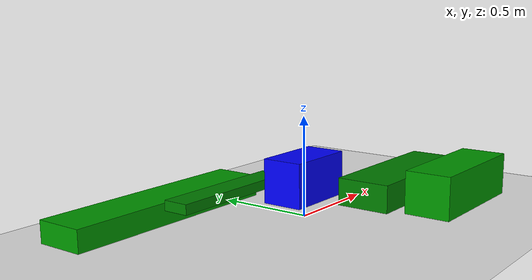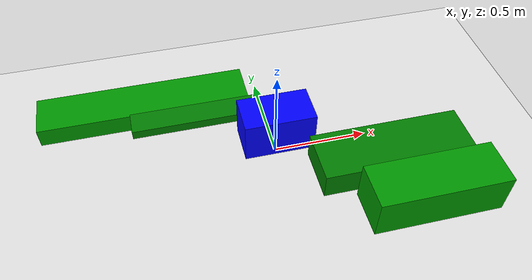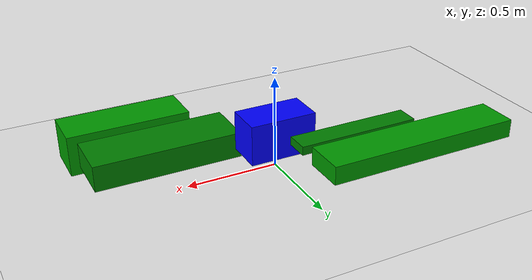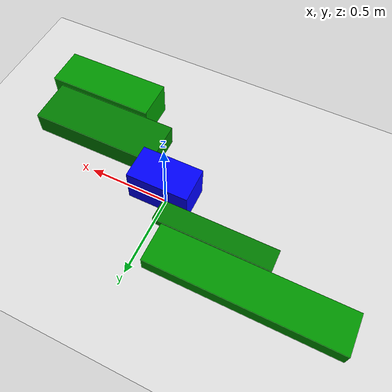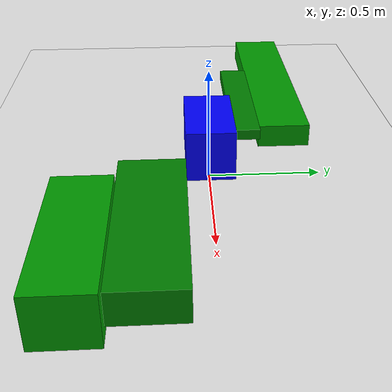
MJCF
<mujoco>
    <worldbody>
    <light diffuse=".5 .5 .5" pos="0 0 3" dir="0 0 -1"/>
    <geom type="plane" size="5 5 0.1" rgba=".9 0.9 0.9 1"/>
    <body name="main body" pos="0 0 .2">
        <joint type="free"/>
        <geom type="box" size="0.1823618432185498 0.10347852472478945 0.10960618824937188" rgba="0 0 1 1" mass="1"/>
        <site name="marker" pos="0 0 0" size="0.05"/>
        <site name="robot_center" pos="0 0 0" size="0.01"/>
        <body name="left_leg1" pos="-0.38 0.16718027308015931 -0.017958062020742512">
            <joint name="left_leg1_joint" type="hinge" axis="0 1 0" pos="0 0 0"/>
            <geom type="box" size="0.3416734528961997 0.06370174835536987 0.024025585299729122" rgba="0 .5 0 1" mass="1"/>
            <body name="left_leg2" pos="-0.2637532840594213 0.17935771714268178 -0.04">
                <joint name="left_leg2_joint" type="hinge" axis="0 1 0" pos="0 0 0"/>
                <geom type="box" size="0.5511745600369033 0.1156559687873119 0.05111184958501502" rgba="0 .6 0 1" mass="1"/>
            </body>
        </body>
        <body name="right_leg1" pos="0.5469934657171783 -0.24333416650117712 -0.09134420926683726">
            <joint name="right_leg1_joint" type="hinge" axis="0 1 0" pos="0 0 0"/>
            <geom type="box" size="0.39660777965287414 0.13985564177638768 0.07031764380456114" rgba="0 .5 0 1" mass="1"/>
            <body name="right_leg2" pos="0.1150039822423069 -0.26168403395629725 -0.011688695269279995">
                <joint name="right_leg2_joint" type="hinge" axis="0 1 0" pos="0 0 0"/>
                <geom type="box" size="0.3335542496064231 0.12182839217990957 0.12327901580387958" rgba="0 .6 0 1" mass="1"/>
            </body>
        </body>
    </body>
    </worldbody>
    <sensor>
        <framepos objtype="site" objname="marker"/>
        <velocimeter name="robot_velocity" site="robot_center"/>
    </sensor>
    <actuator>
        <position joint="left_leg1_joint" kp="10"/>
        <position joint="left_leg2_joint" kp="10"/>
        <position joint="right_leg1_joint" kp="10"/>
        <position joint="right_leg2_joint" kp="10"/>
    </actuator>
</mujoco>
